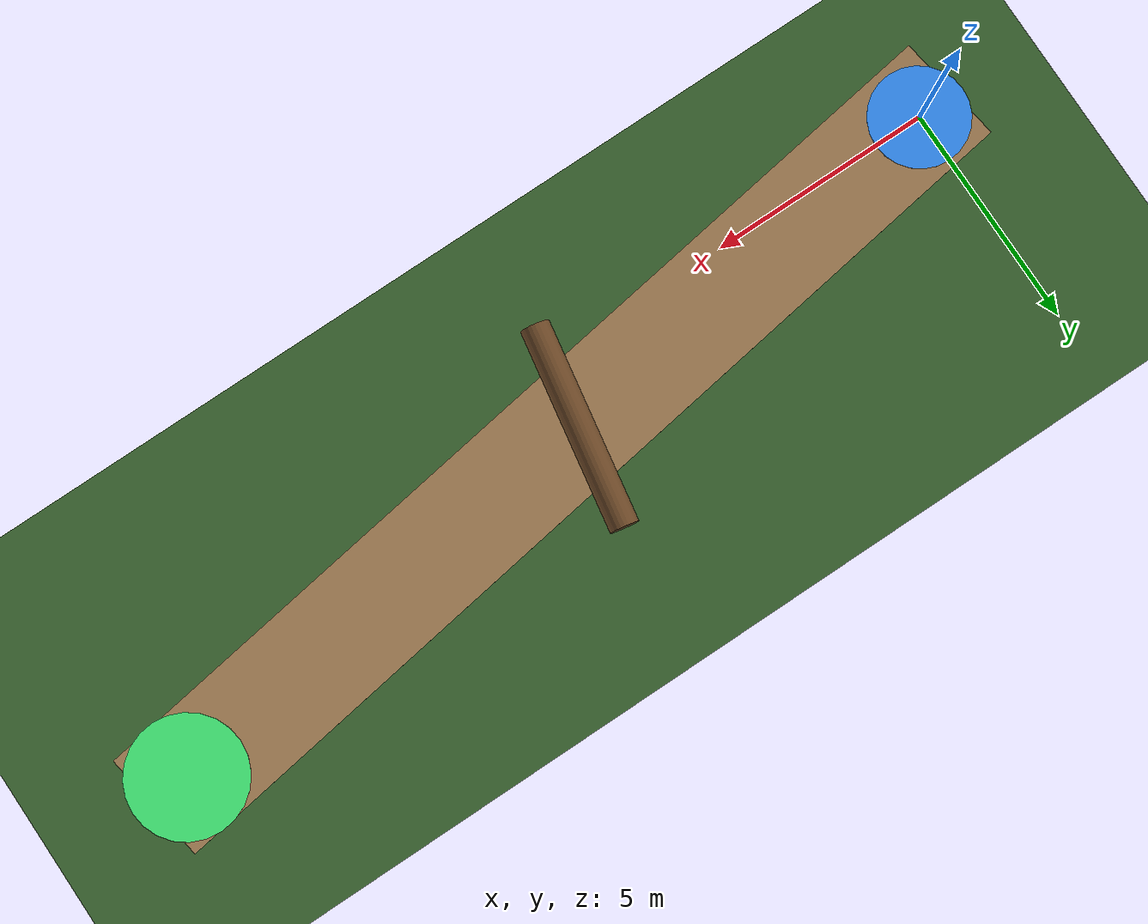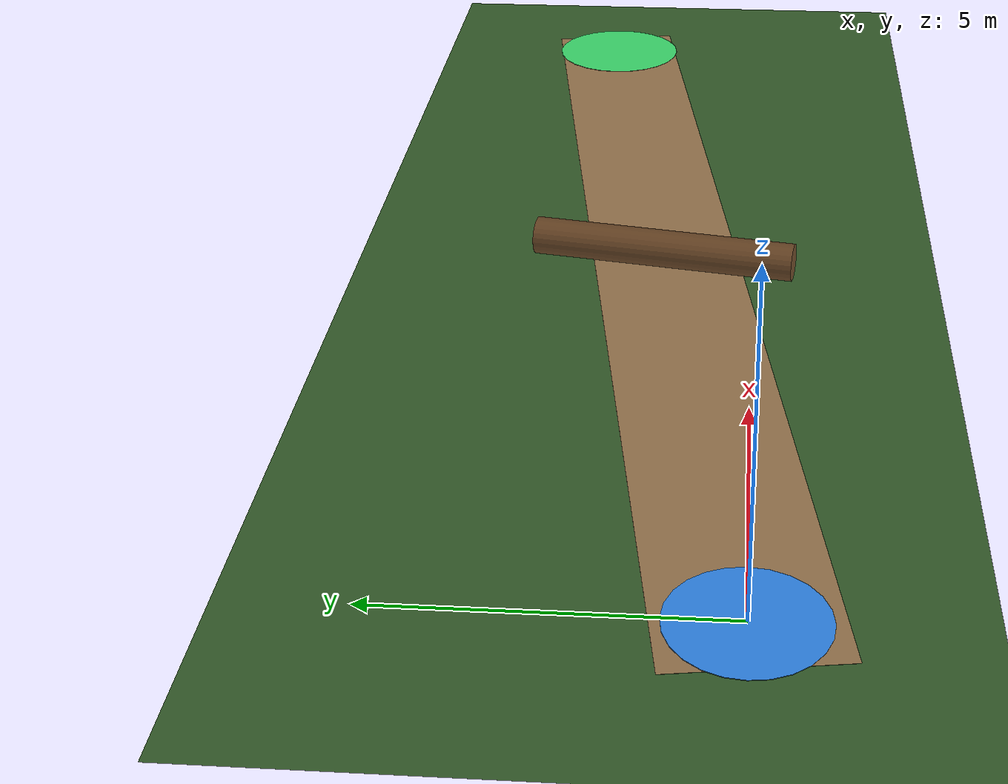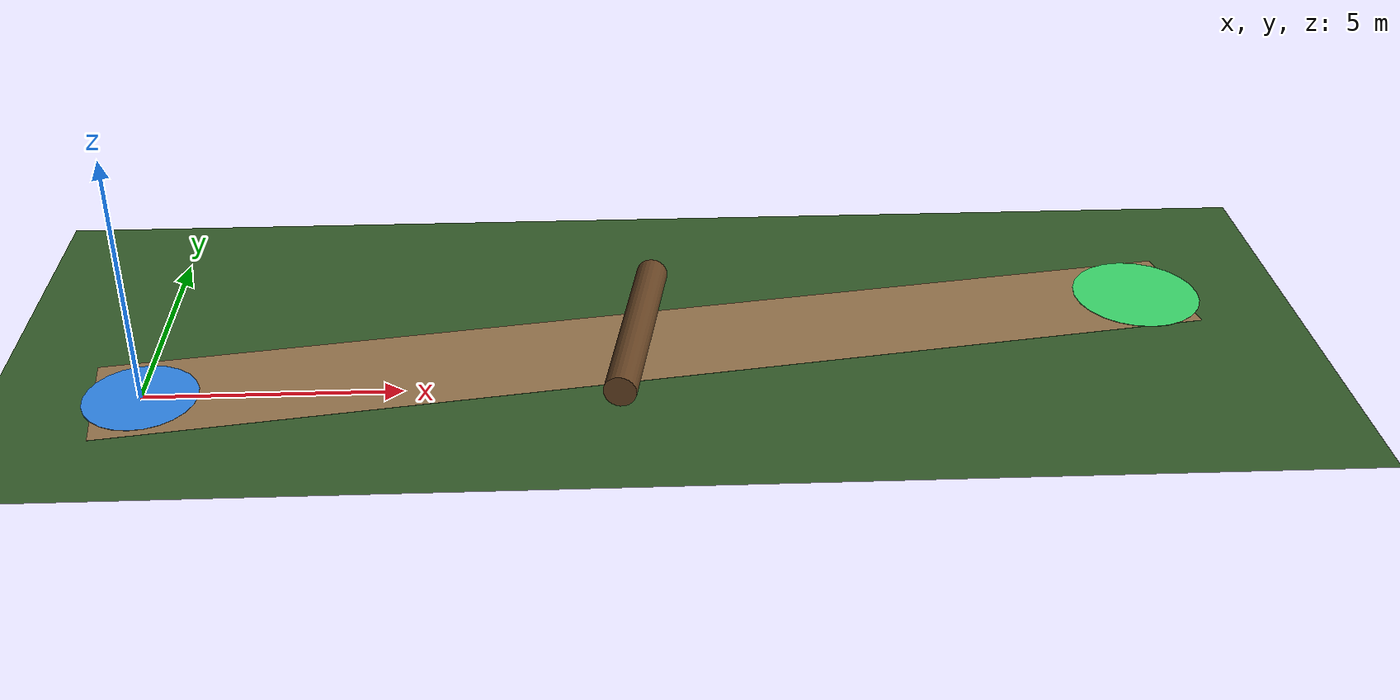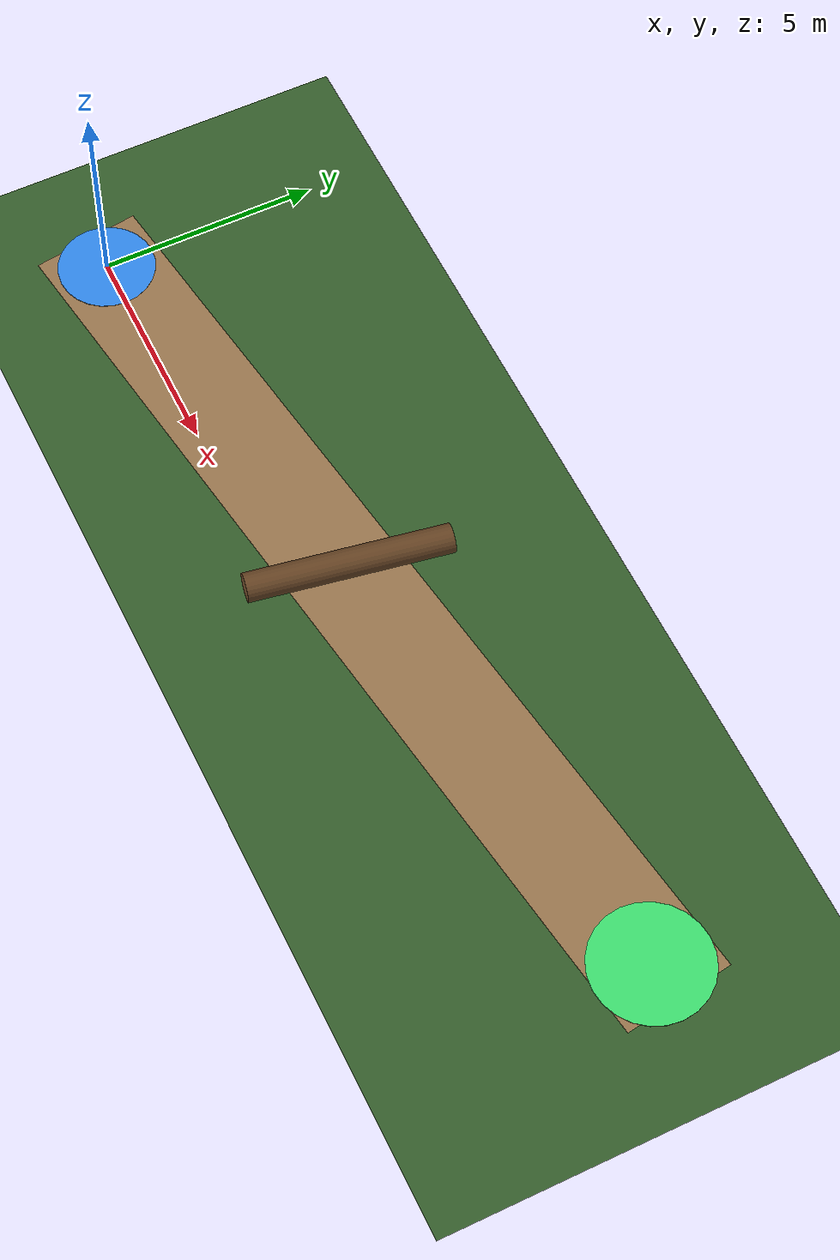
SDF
<?xml version="1.0" ?>
<sdf version="1.8">
  <world name="forest_fallen_tree">
    <physics name="1ms" type="ignored"><max_step_size>0.004</max_step_size><real_time_factor>1.0</real_time_factor></physics>
    <plugin filename="gz-sim-physics-system" name="gz::sim::systems::Physics" />
    <plugin filename="gz-sim-user-commands-system" name="gz::sim::systems::UserCommands" />
    <plugin filename="gz-sim-scene-broadcaster-system" name="gz::sim::systems::SceneBroadcaster" />
    <plugin filename="gz-sim-sensors-system" name="gz::sim::systems::Sensors" />
    <plugin filename="gz-sim-imu-system" name="gz::sim::systems::Imu" />
    <plugin filename="gz-sim-navsat-system" name="gz::sim::systems::NavSat" />

    <light type="directional" name="sun"><cast_shadows>true</cast_shadows><pose>0 0 35 0.5 0.3 0.2</pose><diffuse>0.88 0.86 0.78 1</diffuse><direction>-0.45 0.25 -1</direction></light>
    <scene><ambient>0.55 0.62 0.58 1</ambient><background>0.48 0.68 0.85 1</background><shadows>true</shadows></scene>

    <model name="ground"><static>true</static><link name="l"><collision name="c"><geometry><plane><normal>0 0 1</normal><size>80 80</size></plane></geometry></collision><visual name="v"><geometry><plane><normal>0 0 1</normal><size>80 80</size></plane></geometry><material><ambient>0.18 0.32 0.14 1</ambient><diffuse>0.22 0.38 0.18 1</diffuse></material></visual></link></model>

    <!-- Trail -->
    <model name="trail"><static>true</static><pose>10.0 1.5 0.002 0 0 0.15</pose><link name="l"><visual name="v"><geometry><box><size>22.0 2.5 0.004</size></box></geometry><material><ambient>0.52 0.40 0.26 1</ambient><diffuse>0.62 0.48 0.32 1</diffuse></material></visual></link></model>

    <model name="point_a"><static>true</static><pose>0 0 0.006 0 0 0</pose><link name="l"><visual name="v"><geometry><cylinder><radius>1.1</radius><length>0.01</length></cylinder></geometry><material><ambient>0.15 0.45 0.85 1</ambient><diffuse>0.2 0.55 0.95 1</diffuse></material></visual></link></model>
    <model name="point_b"><static>true</static><pose>20 3.0 0.006 0 0 0</pose><link name="l"><visual name="v"><geometry><cylinder><radius>1.3</radius><length>0.01</length></cylinder></geometry><material><ambient>0.15 0.8 0.35 1</ambient><diffuse>0.25 0.9 0.45 1</diffuse></material></visual></link></model>

    <!-- Large Fallen Tree Trunk completely blocking the direct trail at x=9.5 -->
    <model name="large_fallen_tree">
      <static>true</static>
      <pose>9.5 1.5 0.35 0 1.570796 1.4</pose>
      <link name="link">
        <visual name="v">
          <geometry><cylinder><radius>0.32</radius><length>4.5</length></cylinder></geometry>
          <material><ambient>0.32 0.20 0.10 1</ambient><diffuse>0.42 0.28 0.15 1</diffuse></material>
        </visual>
        <collision name="c">
          <geometry><cylinder><radius>0.32</radius><length>4.5</length></cylinder></geometry>
        </collision>
      </link>
    </model>
  </world>
</sdf>
